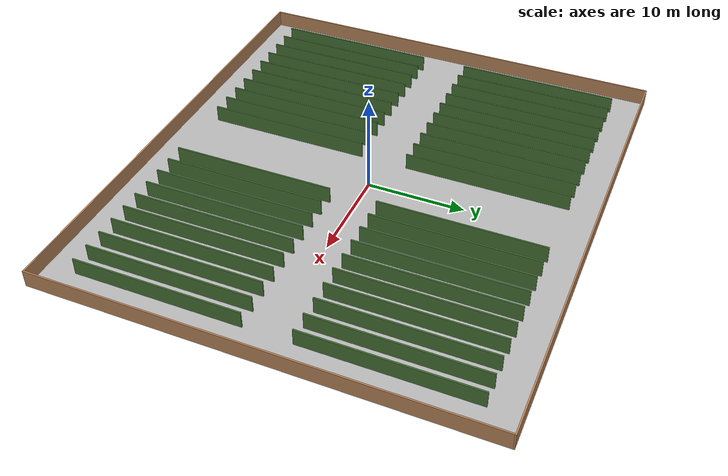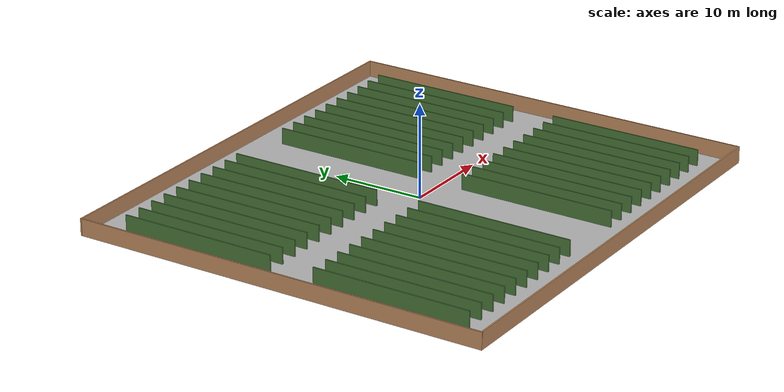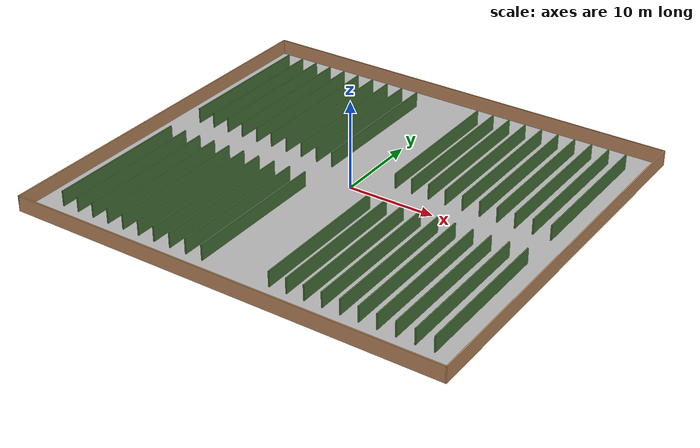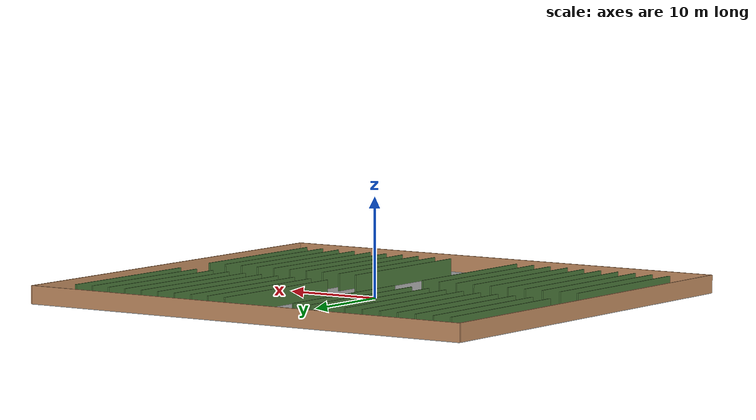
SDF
<?xml version='1.0'?>
<sdf version='1.7'>
  <model name='finca_nueva'>
    <pose>0 0 0 0 0 0</pose>

  <!-- Piso -->
    <link name='Floor_0'>
      <collision name='Floor_0_Collision'>
        <geometry>
          <box>
            <size>50 45 0.1</size>
          </box>
        </geometry>
        <pose>0 0 0 0 0 0</pose>
      </collision>
      <visual name='Floor_0_Visual'>
        <pose>0 0 0 0 0 0</pose>
        <geometry>
          <box>
            <size>50 45 0.1</size>
          </box>
        </geometry>
        <material>
           <script>
            <uri>materials/scripts</uri>
            <uri>materials/textures</uri>
            <name>sandAlbedo/Diffuse</name>
          </script>
        </material>
        <meta>
          <layer>0</layer>
        </meta>
      </visual>
      <pose>0 0 0 0 0 0</pose>
    </link>

  <!-- Paredes -->
    <link name='Wall_1'>
      <collision name='Wall_1_Collision'>
        <geometry>
          <box>
            <size>50.15 0.15 1.8</size>
          </box>
        </geometry>
        <pose>0 0 0.9 0 0 0</pose>
      </collision>
      <visual name='Wall_1_Visual'>
        <pose>0 0 0.9 0 -0 0</pose>
        <geometry>
          <box>
            <size>50.15 0.15 1.8</size>
          </box>
        </geometry>
        <material>
           <script>
            <uri>file://media/materials/scripts/gazebo.material</uri>
            <name>Gazebo/Grey</name>
          </script>
          <ambient>0.709804 0.513726 0.352941 1</ambient>
          <diffuse>0.7 0.7 0.7 1</diffuse>
          <specular>0.01 0.01 0.01 1</specular>
          <emissive>0 0 0 1</emissive>
        </material>
        <meta>
          <layer>0</layer>
        </meta>
      </visual>
      <pose>0 -22.5 0 0 0 0</pose>
    </link>

    <link name='Wall_3'>
      <collision name='Wall_3_Collision'>
        <geometry>
          <box>
            <size>45.15 0.15 1.8</size>
          </box>
        </geometry>
        <pose>0 0 0.9 0 -0 0</pose>
      </collision>
      <visual name='Wall_3_Visual'>
        <pose>0 0 0.9 0 -0 0</pose>
        <geometry>
          <box>
            <size>45.15 0.15 1.8</size>
          </box>
        </geometry>
        <material>
          <script>
            <uri>file://media/materials/scripts/gazebo.material</uri>
            <name>Gazebo/Grey</name>
          </script>
          <ambient>0.709804 0.513726 0.352941 1</ambient>
          <diffuse>0.7 0.7 0.7 1</diffuse>
          <specular>0.01 0.01 0.01 1</specular>
          <emissive>0 0 0 1</emissive>
        </material>
        <meta>
          <layer>0</layer>
        </meta>
      </visual>
      <pose>25 0 0 0 -0 1.5708</pose>
    </link>

    <link name='Wall_4'>
      <collision name='Wall_4_Collision'>
        <geometry>
          <box>
            <size>50.15 0.15 1.8</size>
          </box>
        </geometry>
        <pose>0 0 0.9 0 -0 0</pose>
      </collision>
      <visual name='Wall_4_Visual'>
        <pose>0 0 0.9 0 -0 0</pose>
        <geometry>
          <box>
            <size>50.15 0.15 1.8</size>
          </box>
        </geometry>
        <material>
          <script>
            <uri>file://media/materials/scripts/gazebo.material</uri>
            <name>Gazebo/Grey</name>
          </script>
          <ambient>0.709804 0.513726 0.352941 1</ambient>
          <diffuse>0.7 0.7 0.7 1</diffuse>
          <specular>0.01 0.01 0.01 1</specular>
          <emissive>0 0 0 1</emissive>
        </material>
        <meta>
          <layer>0</layer>
        </meta>
      </visual>
      <pose>0 22.5 0 0 -0 3.14159</pose>
    </link>

    <link name='Wall_5'>
      <collision name='Wall_5_Collision'>
        <geometry>
          <box>
            <size>45.15 0.15 1.8</size>
          </box>
        </geometry>
        <pose>0 0 0.9 0 -0 0</pose>
      </collision>
      <visual name='Wall_5_Visual'>
        <pose>0 0 0.9 0 -0 0</pose>
        <geometry>
          <box>
            <size>45.15 0.15 1.8</size>
          </box>
        </geometry>
        <material>
          <script>
            <uri>file://media/materials/scripts/gazebo.material</uri>
            <name>Gazebo/Grey</name>
          </script>
          <ambient>0.709804 0.513726 0.352941 1</ambient>
          <diffuse>0.7 0.7 0.7 1</diffuse>
          <specular>0.01 0.01 0.01 1</specular>
          <emissive>0 0 0 1</emissive>
        </material>
        <meta>
          <layer>0</layer>
        </meta>
      </visual>
      <pose>-25 0 0 0 -0 -1.5708</pose>
    </link>

  <!-- Arriba Izquierda -->
    <link name='Wall_11'>
      <collision name='Wall_11_Collision'>
        <geometry>
          <box>
            <size>17 0.15 1.8</size>
          </box>
        </geometry>
        <pose>0 0 0.9 0 -0 0</pose>
      </collision>
      <visual name='Wall_11_Visual'>
        <pose>0 0 0.9 0 -0 0</pose>
        <geometry>
          <box>
            <size>17 0.15 1.8</size>
          </box>
        </geometry>
        <material>
          <script>
            <uri>file://media/materials/scripts/gazebo.material</uri>
            <name>Gazebo/Grey</name>
          </script>
          <ambient>0.266667 0.435294 0.203922 1</ambient>
        </material>
        <meta>
          <layer>0</layer>
        </meta>
      </visual>
      <pose>-22 10.925 0 0 -0 -1.5708</pose>
    </link>

    <link name='Wall_12'>
      <collision name='Wall_12_Collision'>
        <geometry>
          <box>
            <size>17 0.15 1.8</size>
          </box>
        </geometry>
        <pose>0 0 0.9 0 -0 0</pose>
      </collision>
      <visual name='Wall_12_Visual'>
        <pose>0 0 0.9 0 -0 0</pose>
        <geometry>
          <box>
            <size>17 0.15 1.8</size>
          </box>
        </geometry>
        <material>
          <script>
            <uri>file://media/materials/scripts/gazebo.material</uri>
            <name>Gazebo/Grey</name>
          </script>
          <ambient>0.266667 0.435294 0.203922 1</ambient>
        </material>
        <meta>
          <layer>0</layer>
        </meta>
      </visual>
      <pose>-20 10.925 0 0 -0 -1.5708</pose>
    </link>

    <link name='Wall_13'>
      <collision name='Wall_13_Collision'>
        <geometry>
          <box>
            <size>17 0.15 1.8</size>
          </box>
        </geometry>
        <pose>0 0 0.9 0 0 0</pose>
      </collision>
      <visual name='Wall_13_Visual'>
        <pose>0 0 0.9 0 0 0</pose>
        <geometry>
          <box>
            <size>17 0.15 1.8</size>
          </box>
        </geometry>
        <material>
          <script>
            <uri>file://media/materials/scripts/gazebo.material</uri>
            <name>Gazebo/Grey</name>
          </script>
          <ambient>0.266667 0.435294 0.203922 1</ambient>
        </material>
        <meta>
          <layer>0</layer>
        </meta>
      </visual>
      <pose>-18 10.925 0 0 0 1.5708</pose>
    </link>

    <link name='Wall_14'>
      <collision name='Wall_14_Collision'>
        <geometry>
          <box>
            <size>17 0.15 1.8</size>
          </box>
        </geometry>
        <pose>0 0 0.9 0 0 0</pose>
      </collision>
      <visual name='Wall_14_Visual'>
        <pose>0 0 0.9 0 0 0</pose>
        <geometry>
          <box>
            <size>17 0.15 1.8</size>
          </box>
        </geometry>
        <material>
          <script>
            <uri>file://media/materials/scripts/gazebo.material</uri>
            <name>Gazebo/Grey</name>
          </script>
          <ambient>0.266667 0.435294 0.203922 1</ambient>
        </material>
        <meta>
          <layer>0</layer>
        </meta>
      </visual>
      <pose>-16 10.925 0 0 0 1.5708</pose>
    </link>

    <link name='Wall_15'>
      <collision name='Wall_15_Collision'>
        <geometry>
          <box>
            <size>17 0.15 1.8</size>
          </box>
        </geometry>
        <pose>0 0 0.9 0 0 0</pose>
      </collision>
      <visual name='Wall_15_Visual'>
        <pose>0 0 0.9 0 0 0</pose>
        <geometry>
          <box>
            <size>17 0.15 1.8</size>
          </box>
        </geometry>
        <material>
          <script>
            <uri>file://media/materials/scripts/gazebo.material</uri>
            <name>Gazebo/Grey</name>
          </script>
          <ambient>0.266667 0.435294 0.203922 1</ambient>
        </material>
        <meta>
          <layer>0</layer>
        </meta>
      </visual>
      <pose>-14 10.925 0 0 0 1.5708</pose>
    </link>

    <link name='Wall_16'>
      <collision name='Wall_16_Collision'>
        <geometry>
          <box>
            <size>17 0.15 1.8</size>
          </box>
        </geometry>
        <pose>0 0 0.9 0 0 0</pose>
      </collision>
      <visual name='Wall_16_Visual'>
        <pose>0 0 0.9 0 0 0</pose>
        <geometry>
          <box>
            <size>17 0.15 1.8</size>
          </box>
        </geometry>
        <material>
          <script>
            <uri>file://media/materials/scripts/gazebo.material</uri>
            <name>Gazebo/Grey</name>
          </script>
          <ambient>0.266667 0.435294 0.203922 1</ambient>
        </material>
        <meta>
          <layer>0</layer>
        </meta>
      </visual>
      <pose>-12 10.925 0 0 0 1.5708</pose>
    </link>

    <link name='Wall_17'>
      <collision name='Wall_17_Collision'>
        <geometry>
          <box>
            <size>17 0.15 1.8</size>
          </box>
        </geometry>
        <pose>0 0 0.9 0 0 0</pose>
      </collision>
      <visual name='Wall_17_Visual'>
        <pose>0 0 0.9 0 0 0</pose>
        <geometry>
          <box>
            <size>17 0.15 1.8</size>
          </box>
        </geometry>
        <material>
          <script>
            <uri>file://media/materials/scripts/gazebo.material</uri>
            <name>Gazebo/Grey</name>
          </script>
          <ambient>0.266667 0.435294 0.203922 1</ambient>
        </material>
        <meta>
          <layer>0</layer>
        </meta>
      </visual>
      <pose>-10 10.925 0 0 0 1.5708</pose>
    </link>

    <link name='Wall_18'>
      <collision name='Wall_18_Collision'>
        <geometry>
          <box>
            <size>17 0.15 1.8</size>
          </box>
        </geometry>
        <pose>0 0 0.9 0 0 0</pose>
      </collision>
      <visual name='Wall_18_Visual'>
        <pose>0 0 0.9 0 0 0</pose>
        <geometry>
          <box>
            <size>17 0.15 1.8</size>
          </box>
        </geometry>
        <material>
          <script>
            <uri>file://media/materials/scripts/gazebo.material</uri>
            <name>Gazebo/Grey</name>
          </script>
          <ambient>0.266667 0.435294 0.203922 1</ambient>
        </material>
        <meta>
          <layer>0</layer>
        </meta>
      </visual>
      <pose>-8 10.925 0 0 0 1.5708</pose>
    </link>

    <link name='Wall_19'>
      <collision name='Wall_19_Collision'>
        <geometry>
          <box>
            <size>17 0.15 1.8</size>
          </box>
        </geometry>
        <pose>0 0 0.9 0 0 0</pose>
      </collision>
      <visual name='Wall_19_Visual'>
        <pose>0 0 0.9 0 0 0</pose>
        <geometry>
          <box>
            <size>17 0.15 1.8</size>
          </box>
        </geometry>
        <material>
          <script>
            <uri>file://media/materials/scripts/gazebo.material</uri>
            <name>Gazebo/Grey</name>
          </script>
          <ambient>0.266667 0.435294 0.203922 1</ambient>
        </material>
        <meta>
          <layer>0</layer>
        </meta>
      </visual>
      <pose>-6 10.925 0 0 0 1.5708</pose>
    </link>

    <link name='Wall_20'>
      <collision name='Wall_20_Collision'>
        <geometry>
          <box>
            <size>17 0.15 1.8</size>
          </box>
        </geometry>
        <pose>0 0 0.9 0 0 0</pose>
      </collision>
      <visual name='Wall_20_Visual'>
        <pose>0 0 0.9 0 0 0</pose>
        <geometry>
          <box>
            <size>17 0.15 1.8</size>
          </box>
        </geometry>
        <material>
          <script>
            <uri>file://media/materials/scripts/gazebo.material</uri>
            <name>Gazebo/Grey</name>
          </script>
          <ambient>0.266667 0.435294 0.203922 1</ambient>
        </material>
        <meta>
          <layer>0</layer>
        </meta>
      </visual>
      <pose>-4 10.925 0 0 0 1.5708</pose>
    </link>

  <!-- Arriba Derecha -->
    <link name='Wall_21'>
      <collision name='Wall_21_Collision'>
        <geometry>
          <box>
            <size>17 0.15 1.8</size>
          </box>
        </geometry>
        <pose>0 0 0.9 0 -0 0</pose>
      </collision>
      <visual name='Wall_21_Visual'>
        <pose>0 0 0.9 0 -0 0</pose>
        <geometry>
          <box>
            <size>17 0.15 1.8</size>
          </box>
        </geometry>
        <material>
          <script>
            <uri>file://media/materials/scripts/gazebo.material</uri>
            <name>Gazebo/Grey</name>
          </script>
          <ambient>0.266667 0.435294 0.203922 1</ambient>
        </material>
        <meta>
          <layer>0</layer>
        </meta>
      </visual>
      <pose>4 10.925 0 0 -0 1.5708</pose>
    </link>

    <link name='Wall_22'>
      <collision name='Wall_22_Collision'>
        <geometry>
          <box>
            <size>17 0.15 1.8</size>
          </box>
        </geometry>
        <pose>0 0 0.9 0 -0 0</pose>
      </collision>
      <visual name='Wall_22_Visual'>
        <pose>0 0 0.9 0 -0 0</pose>
        <geometry>
          <box>
            <size>17 0.15 1.8</size>
          </box>
        </geometry>
        <material>
          <script>
            <uri>file://media/materials/scripts/gazebo.material</uri>
            <name>Gazebo/Grey</name>
          </script>
          <ambient>0.266667 0.435294 0.203922 1</ambient>
        </material>
        <meta>
          <layer>0</layer>
        </meta>
      </visual>
      <pose>6 10.925 0 0 -0 1.5708</pose>
    </link>

    <link name='Wall_23'>
      <collision name='Wall_23_Collision'>
        <geometry>
          <box>
            <size>17 0.15 1.8</size>
          </box>
        </geometry>
        <pose>0 0 0.9 0 -0 0</pose>
      </collision>
      <visual name='Wall_23_Visual'>
        <pose>0 0 0.9 0 -0 0</pose>
        <geometry>
          <box>
            <size>17 0.15 1.8</size>
          </box>
        </geometry>
        <material>
          <script>
            <uri>file://media/materials/scripts/gazebo.material</uri>
            <name>Gazebo/Grey</name>
          </script>
          <ambient>0.266667 0.435294 0.203922 1</ambient>
        </material>
        <meta>
          <layer>0</layer>
        </meta>
      </visual>
      <pose>8 10.925 0 0 -0 1.5708</pose>
    </link>

    <link name='Wall_24'>
      <collision name='Wall_24_Collision'>
        <geometry>
          <box>
            <size>17 0.15 1.8</size>
          </box>
        </geometry>
        <pose>0 0 0.9 0 -0 0</pose>
      </collision>
      <visual name='Wall_24_Visual'>
        <pose>0 0 0.9 0 -0 0</pose>
        <geometry>
          <box>
            <size>17 0.15 1.8</size>
          </box>
        </geometry>
        <material>
          <script>
            <uri>file://media/materials/scripts/gazebo.material</uri>
            <name>Gazebo/Grey</name>
          </script>
          <ambient>0.266667 0.435294 0.203922 1</ambient>
        </material>
        <meta>
          <layer>0</layer>
        </meta>
      </visual>
      <pose>10 10.925 0 0 -0 1.5708</pose>
    </link>

    <link name='Wall_25'>
      <collision name='Wall_25_Collision'>
        <geometry>
          <box>
            <size>17 0.15 1.8</size>
          </box>
        </geometry>
        <pose>0 0 0.9 0 -0 0</pose>
      </collision>
      <visual name='Wall_25_Visual'>
        <pose>0 0 0.9 0 -0 0</pose>
        <geometry>
          <box>
            <size>17 0.15 1.8</size>
          </box>
        </geometry>
        <material>
          <script>
            <uri>file://media/materials/scripts/gazebo.material</uri>
            <name>Gazebo/Grey</name>
          </script>
          <ambient>0.266667 0.435294 0.203922 1</ambient>
        </material>
        <meta>
          <layer>0</layer>
        </meta>
      </visual>
      <pose>12 10.925 0 0 -0 1.5708</pose>
    </link>

    <link name='Wall_26'>
      <collision name='Wall_26_Collision'>
        <geometry>
          <box>
            <size>17 0.15 1.8</size>
          </box>
        </geometry>
        <pose>0 0 0.9 0 -0 0</pose>
      </collision>
      <visual name='Wall_26_Visual'>
        <pose>0 0 0.9 0 -0 0</pose>
        <geometry>
          <box>
            <size>17 0.15 1.8</size>
          </box>
        </geometry>
        <material>
          <script>
            <uri>file://media/materials/scripts/gazebo.material</uri>
            <name>Gazebo/Grey</name>
          </script>
          <ambient>0.266667 0.435294 0.203922 1</ambient>
        </material>
        <meta>
          <layer>0</layer>
        </meta>
      </visual>
      <pose>14 10.925 0 0 -0 1.5708</pose>
    </link>

    <link name='Wall_27'>
      <collision name='Wall_27_Collision'>
        <geometry>
          <box>
            <size>17 0.15 1.8</size>
          </box>
        </geometry>
        <pose>0 0 0.9 0 -0 0</pose>
      </collision>
      <visual name='Wall_27_Visual'>
        <pose>0 0 0.9 0 -0 0</pose>
        <geometry>
          <box>
            <size>17 0.15 1.8</size>
          </box>
        </geometry>
        <material>
          <script>
            <uri>file://media/materials/scripts/gazebo.material</uri>
            <name>Gazebo/Grey</name>
          </script>
          <ambient>0.266667 0.435294 0.203922 1</ambient>
        </material>
        <meta>
          <layer>0</layer>
        </meta>
      </visual>
      <pose>16 10.925 0 0 -0 1.5708</pose>
    </link>

    <link name='Wall_28'>
      <collision name='Wall_28_Collision'>
        <geometry>
          <box>
            <size>17 0.15 1.8</size>
          </box>
        </geometry>
        <pose>0 0 0.9 0 -0 0</pose>
      </collision>
      <visual name='Wall_28_Visual'>
        <pose>0 0 0.9 0 -0 0</pose>
        <geometry>
          <box>
            <size>17 0.15 1.8</size>
          </box>
        </geometry>
        <material>
          <script>
            <uri>file://media/materials/scripts/gazebo.material</uri>
            <name>Gazebo/Grey</name>
          </script>
          <ambient>0.266667 0.435294 0.203922 1</ambient>
        </material>
        <meta>
          <layer>0</layer>
        </meta>
      </visual>
      <pose>18 10.925 0 0 -0 1.5708</pose>
    </link>

    <link name='Wall_29'>
      <collision name='Wall_29_Collision'>
        <geometry>
          <box>
            <size>17 0.15 1.8</size>
          </box>
        </geometry>
        <pose>0 0 0.9 0 -0 0</pose>
      </collision>
      <visual name='Wall_29_Visual'>
        <pose>0 0 0.9 0 -0 0</pose>
        <geometry>
          <box>
            <size>17 0.15 1.8</size>
          </box>
        </geometry>
        <material>
          <script>
            <uri>file://media/materials/scripts/gazebo.material</uri>
            <name>Gazebo/Grey</name>
          </script>
          <ambient>0.266667 0.435294 0.203922 1</ambient>
        </material>
        <meta>
          <layer>0</layer>
        </meta>
      </visual>
      <pose>20 10.925 0 0 -0 1.5708</pose>
    </link>

    <link name='Wall_30'>
      <collision name='Wall_30_Collision'>
        <geometry>
          <box>
            <size>17 0.15 1.8</size>
          </box>
        </geometry>
        <pose>0 0 0.9 0 -0 0</pose>
      </collision>
      <visual name='Wall_30_Visual'>
        <pose>0 0 0.9 0 -0 0</pose>
        <geometry>
          <box>
            <size>17 0.15 1.8</size>
          </box>
        </geometry>
        <material>
          <script>
            <uri>file://media/materials/scripts/gazebo.material</uri>
            <name>Gazebo/Grey</name>
          </script>
          <ambient>0.266667 0.435294 0.203922 1</ambient>
        </material>
        <meta>
          <layer>0</layer>
        </meta>
      </visual>
      <pose>22 10.925 0 0 -0 1.5708</pose>
    </link>

  <!-- Abajo Derecha -->
    <link name='Wall_31'>
      <collision name='Wall_31_Collision'>
        <geometry>
          <box>
            <size>17 0.15 1.8</size>
          </box>
        </geometry>
        <pose>0 0 0.9 0 -0 0</pose>
      </collision>
      <visual name='Wall_31_Visual'>
        <pose>0 0 0.9 0 -0 0</pose>
        <geometry>
          <box>
            <size>17 0.15 1.8</size>
          </box>
        </geometry>
        <material>
          <script>
            <uri>file://media/materials/scripts/gazebo.material</uri>
            <name>Gazebo/Grey</name>
          </script>
          <ambient>0.266667 0.435294 0.203922 1</ambient>
        </material>
        <meta>
          <layer>0</layer>
        </meta>
      </visual>
      <pose>4 -10.925 0 0 -0 1.5708</pose>
    </link>

    <link name='Wall_32'>
      <collision name='Wall_32_Collision'>
        <geometry>
          <box>
            <size>17 0.15 1.8</size>
          </box>
        </geometry>
        <pose>0 0 0.9 0 -0 0</pose>
      </collision>
      <visual name='Wall_32_Visual'>
        <pose>0 0 0.9 0 -0 0</pose>
        <geometry>
          <box>
            <size>17 0.15 1.8</size>
          </box>
        </geometry>
        <material>
          <script>
            <uri>file://media/materials/scripts/gazebo.material</uri>
            <name>Gazebo/Grey</name>
          </script>
          <ambient>0.266667 0.435294 0.203922 1</ambient>
        </material>
        <meta>
          <layer>0</layer>
        </meta>
      </visual>
      <pose>6 -10.925 0 0 -0 1.5708</pose>
    </link>

    <link name='Wall_33'>
      <collision name='Wall_33_Collision'>
        <geometry>
          <box>
            <size>17 0.15 1.8</size>
          </box>
        </geometry>
        <pose>0 0 0.9 0 -0 0</pose>
      </collision>
      <visual name='Wall_33_Visual'>
        <pose>0 0 0.9 0 -0 0</pose>
        <geometry>
          <box>
            <size>17 0.15 1.8</size>
          </box>
        </geometry>
        <material>
          <script>
            <uri>file://media/materials/scripts/gazebo.material</uri>
            <name>Gazebo/Grey</name>
          </script>
          <ambient>0.266667 0.435294 0.203922 1</ambient>
        </material>
        <meta>
          <layer>0</layer>
        </meta>
      </visual>
      <pose>8 -10.925 0 0 -0 1.5708</pose>
    </link>

    <link name='Wall_34'>
      <collision name='Wall_34_Collision'>
        <geometry>
          <box>
            <size>17 0.15 1.8</size>
          </box>
        </geometry>
        <pose>0 0 0.9 0 -0 0</pose>
      </collision>
      <visual name='Wall_34_Visual'>
        <pose>0 0 0.9 0 -0 0</pose>
        <geometry>
          <box>
            <size>17 0.15 1.8</size>
          </box>
        </geometry>
        <material>
          <script>
            <uri>file://media/materials/scripts/gazebo.material</uri>
            <name>Gazebo/Grey</name>
          </script>
          <ambient>0.266667 0.435294 0.203922 1</ambient>
        </material>
        <meta>
          <layer>0</layer>
        </meta>
      </visual>
      <pose>10 -10.925 0 0 -0 1.5708</pose>
    </link>

    <link name='Wall_35'>
      <collision name='Wall_35_Collision'>
        <geometry>
          <box>
            <size>17 0.15 1.8</size>
          </box>
        </geometry>
        <pose>0 0 0.9 0 -0 0</pose>
      </collision>
      <visual name='Wall_35_Visual'>
        <pose>0 0 0.9 0 -0 0</pose>
        <geometry>
          <box>
            <size>17 0.15 1.8</size>
          </box>
        </geometry>
        <material>
          <script>
            <uri>file://media/materials/scripts/gazebo.material</uri>
            <name>Gazebo/Grey</name>
          </script>
          <ambient>0.266667 0.435294 0.203922 1</ambient>
        </material>
        <meta>
          <layer>0</layer>
        </meta>
      </visual>
      <pose>12 -10.925 0 0 -0 1.5708</pose>
    </link>

    <link name='Wall_36'>
      <collision name='Wall_36_Collision'>
        <geometry>
          <box>
            <size>17 0.15 1.8</size>
          </box>
        </geometry>
        <pose>0 0 0.9 0 -0 0</pose>
      </collision>
      <visual name='Wall_36_Visual'>
        <pose>0 0 0.9 0 -0 0</pose>
        <geometry>
          <box>
            <size>17 0.15 1.8</size>
          </box>
        </geometry>
        <material>
          <script>
            <uri>file://media/materials/scripts/gazebo.material</uri>
            <name>Gazebo/Grey</name>
          </script>
          <ambient>0.266667 0.435294 0.203922 1</ambient>
        </material>
        <meta>
          <layer>0</layer>
        </meta>
      </visual>
      <pose>14 -10.925 0 0 -0 1.5708</pose>
    </link>

    <link name='Wall_37'>
      <collision name='Wall_37_Collision'>
        <geometry>
          <box>
            <size>17 0.15 1.8</size>
          </box>
        </geometry>
        <pose>0 0 0.9 0 -0 0</pose>
      </collision>
      <visual name='Wall_37_Visual'>
        <pose>0 0 0.9 0 -0 0</pose>
        <geometry>
          <box>
            <size>17 0.15 1.8</size>
          </box>
        </geometry>
        <material>
          <script>
            <uri>file://media/materials/scripts/gazebo.material</uri>
            <name>Gazebo/Grey</name>
          </script>
          <ambient>0.266667 0.435294 0.203922 1</ambient>
        </material>
        <meta>
          <layer>0</layer>
        </meta>
      </visual>
      <pose>16 -10.925 0 0 -0 1.5708</pose>
    </link>

    <link name='Wall_38'>
      <collision name='Wall_38_Collision'>
        <geometry>
          <box>
            <size>17 0.15 1.8</size>
          </box>
        </geometry>
        <pose>0 0 0.9 0 -0 0</pose>
      </collision>
      <visual name='Wall_38_Visual'>
        <pose>0 0 0.9 0 -0 0</pose>
        <geometry>
          <box>
            <size>17 0.15 1.8</size>
          </box>
        </geometry>
        <material>
          <script>
            <uri>file://media/materials/scripts/gazebo.material</uri>
            <name>Gazebo/Grey</name>
          </script>
          <ambient>0.266667 0.435294 0.203922 1</ambient>
        </material>
        <meta>
          <layer>0</layer>
        </meta>
      </visual>
      <pose>18 -10.925 0 0 -0 1.5708</pose>
    </link>

    <link name='Wall_39'>
      <collision name='Wall_39_Collision'>
        <geometry>
          <box>
            <size>17 0.15 1.8</size>
          </box>
        </geometry>
        <pose>0 0 0.9 0 -0 0</pose>
      </collision>
      <visual name='Wall_39_Visual'>
        <pose>0 0 0.9 0 -0 0</pose>
        <geometry>
          <box>
            <size>17 0.15 1.8</size>
          </box>
        </geometry>
        <material>
          <script>
            <uri>file://media/materials/scripts/gazebo.material</uri>
            <name>Gazebo/Grey</name>
          </script>
          <ambient>0.266667 0.435294 0.203922 1</ambient>
        </material>
        <meta>
          <layer>0</layer>
        </meta>
      </visual>
      <pose>20 -10.925 0 0 -0 1.5708</pose>
    </link>

    <link name='Wall_40'>
      <collision name='Wall_40_Collision'>
        <geometry>
          <box>
            <size>17 0.15 1.8</size>
          </box>
        </geometry>
        <pose>0 0 0.9 0 -0 0</pose>
      </collision>
      <visual name='Wall_40_Visual'>
        <pose>0 0 0.9 0 -0 0</pose>
        <geometry>
          <box>
            <size>17 0.15 1.8</size>
          </box>
        </geometry>
        <material>
          <script>
            <uri>file://media/materials/scripts/gazebo.material</uri>
            <name>Gazebo/Grey</name>
          </script>
          <ambient>0.266667 0.435294 0.203922 1</ambient>
        </material>
        <meta>
          <layer>0</layer>
        </meta>
      </visual>
      <pose>22 -10.925 0 0 -0 1.5708</pose>
    </link>

  <!-- Abajo Izquierda -->
    <link name='Wall_41'>
      <collision name='Wall_41_Collision'>
        <geometry>
          <box>
            <size>17 0.15 1.8</size>
          </box>
        </geometry>
        <pose>0 0 0.9 0 -0 0</pose>
      </collision>
      <visual name='Wall_41_Visual'>
        <pose>0 0 0.9 0 -0 0</pose>
        <geometry>
          <box>
            <size>17 0.15 1.8</size>
          </box>
        </geometry>
        <material>
          <script>
            <uri>file://media/materials/scripts/gazebo.material</uri>
            <name>Gazebo/Grey</name>
          </script>
          <ambient>0.266667 0.435294 0.203922 1</ambient>
        </material>
        <meta>
          <layer>0</layer>
        </meta>
      </visual>
      <pose>-22 -10.925 0 0 -0 -1.5708</pose>
    </link>

    <link name='Wall_42'>
      <collision name='Wall_42_Collision'>
        <geometry>
          <box>
            <size>17 0.15 1.8</size>
          </box>
        </geometry>
        <pose>0 0 0.9 0 -0 0</pose>
      </collision>
      <visual name='Wall_42_Visual'>
        <pose>0 0 0.9 0 -0 0</pose>
        <geometry>
          <box>
            <size>17 0.15 1.8</size>
          </box>
        </geometry>
        <material>
          <script>
            <uri>file://media/materials/scripts/gazebo.material</uri>
            <name>Gazebo/Grey</name>
          </script>
          <ambient>0.266667 0.435294 0.203922 1</ambient>
        </material>
        <meta>
          <layer>0</layer>
        </meta>
      </visual>
      <pose>-20 -10.925 0 0 -0 -1.5708</pose>
    </link>

    <link name='Wall_43'>
      <collision name='Wall_43_Collision'>
        <geometry>
          <box>
            <size>17 0.15 1.8</size>
          </box>
        </geometry>
        <pose>0 0 0.9 0 0 0</pose>
      </collision>
      <visual name='Wall_43_Visual'>
        <pose>0 0 0.9 0 0 0</pose>
        <geometry>
          <box>
            <size>17 0.15 1.8</size>
          </box>
        </geometry>
        <material>
          <script>
            <uri>file://media/materials/scripts/gazebo.material</uri>
            <name>Gazebo/Grey</name>
          </script>
          <ambient>0.266667 0.435294 0.203922 1</ambient>
        </material>
        <meta>
          <layer>0</layer>
        </meta>
      </visual>
      <pose>-18 -10.925 0 0 0 1.5708</pose>
    </link>

    <link name='Wall_44'>
      <collision name='Wall_44_Collision'>
        <geometry>
          <box>
            <size>17 0.15 1.8</size>
          </box>
        </geometry>
        <pose>0 0 0.9 0 0 0</pose>
      </collision>
      <visual name='Wall_44_Visual'>
        <pose>0 0 0.9 0 0 0</pose>
        <geometry>
          <box>
            <size>17 0.15 1.8</size>
          </box>
        </geometry>
        <material>
          <script>
            <uri>file://media/materials/scripts/gazebo.material</uri>
            <name>Gazebo/Grey</name>
          </script>
          <ambient>0.266667 0.435294 0.203922 1</ambient>
        </material>
        <meta>
          <layer>0</layer>
        </meta>
      </visual>
      <pose>-16 -10.925 0 0 0 1.5708</pose>
    </link>

    <link name='Wall_45'>
      <collision name='Wall_45_Collision'>
        <geometry>
          <box>
            <size>17 0.15 1.8</size>
          </box>
        </geometry>
        <pose>0 0 0.9 0 0 0</pose>
      </collision>
      <visual name='Wall_45_Visual'>
        <pose>0 0 0.9 0 0 0</pose>
        <geometry>
          <box>
            <size>17 0.15 1.8</size>
          </box>
        </geometry>
        <material>
          <script>
            <uri>file://media/materials/scripts/gazebo.material</uri>
            <name>Gazebo/Grey</name>
          </script>
          <ambient>0.266667 0.435294 0.203922 1</ambient>
        </material>
        <meta>
          <layer>0</layer>
        </meta>
      </visual>
      <pose>-14 -10.925 0 0 0 1.5708</pose>
    </link>

    <link name='Wall_46'>
      <collision name='Wall_46_Collision'>
        <geometry>
          <box>
            <size>17 0.15 1.8</size>
          </box>
        </geometry>
        <pose>0 0 0.9 0 0 0</pose>
      </collision>
      <visual name='Wall_46_Visual'>
        <pose>0 0 0.9 0 0 0</pose>
        <geometry>
          <box>
            <size>17 0.15 1.8</size>
          </box>
        </geometry>
        <material>
          <script>
            <uri>file://media/materials/scripts/gazebo.material</uri>
            <name>Gazebo/Grey</name>
          </script>
          <ambient>0.266667 0.435294 0.203922 1</ambient>
        </material>
        <meta>
          <layer>0</layer>
        </meta>
      </visual>
      <pose>-12 -10.925 0 0 0 1.5708</pose>
    </link>

    <link name='Wall_47'>
      <collision name='Wall_47_Collision'>
        <geometry>
          <box>
            <size>17 0.15 1.8</size>
          </box>
        </geometry>
        <pose>0 0 0.9 0 0 0</pose>
      </collision>
      <visual name='Wall_47_Visual'>
        <pose>0 0 0.9 0 0 0</pose>
        <geometry>
          <box>
            <size>17 0.15 1.8</size>
          </box>
        </geometry>
        <material>
          <script>
            <uri>file://media/materials/scripts/gazebo.material</uri>
            <name>Gazebo/Grey</name>
          </script>
          <ambient>0.266667 0.435294 0.203922 1</ambient>
        </material>
        <meta>
          <layer>0</layer>
        </meta>
      </visual>
      <pose>-10 -10.925 0 0 0 1.5708</pose>
    </link>

    <link name='Wall_48'>
      <collision name='Wall_48_Collision'>
        <geometry>
          <box>
            <size>17 0.15 1.8</size>
          </box>
        </geometry>
        <pose>0 0 0.9 0 0 0</pose>
      </collision>
      <visual name='Wall_48_Visual'>
        <pose>0 0 0.9 0 0 0</pose>
        <geometry>
          <box>
            <size>17 0.15 1.8</size>
          </box>
        </geometry>
        <material>
          <script>
            <uri>file://media/materials/scripts/gazebo.material</uri>
            <name>Gazebo/Grey</name>
          </script>
          <ambient>0.266667 0.435294 0.203922 1</ambient>
        </material>
        <meta>
          <layer>0</layer>
        </meta>
      </visual>
      <pose>-8 -10.925 0 0 0 1.5708</pose>
    </link>

    <link name='Wall_49'>
      <collision name='Wall_49_Collision'>
        <geometry>
          <box>
            <size>17 0.15 1.8</size>
          </box>
        </geometry>
        <pose>0 0 0.9 0 0 0</pose>
      </collision>
      <visual name='Wall_49_Visual'>
        <pose>0 0 0.9 0 0 0</pose>
        <geometry>
          <box>
            <size>17 0.15 1.8</size>
          </box>
        </geometry>
        <material>
          <script>
            <uri>file://media/materials/scripts/gazebo.material</uri>
            <name>Gazebo/Grey</name>
          </script>
          <ambient>0.266667 0.435294 0.203922 1</ambient>
        </material>
        <meta>
          <layer>0</layer>
        </meta>
      </visual>
      <pose>-6 -10.925 0 0 0 1.5708</pose>
    </link>

    <link name='Wall_50'>
      <collision name='Wall_50_Collision'>
        <geometry>
          <box>
            <size>17 0.15 1.8</size>
          </box>
        </geometry>
        <pose>0 0 0.9 0 0 0</pose>
      </collision>
      <visual name='Wall_50_Visual'>
        <pose>0 0 0.9 0 0 0</pose>
        <geometry>
          <box>
            <size>17 0.15 1.8</size>
          </box>
        </geometry>
        <material>
          <script>
            <uri>file://media/materials/scripts/gazebo.material</uri>
            <name>Gazebo/Grey</name>
          </script>
          <ambient>0.266667 0.435294 0.203922 1</ambient>
        </material>
        <meta>
          <layer>0</layer>
        </meta>
      </visual>
      <pose>-4 -10.925 0 0 0 1.5708</pose>
    </link>

    <static>1</static>
  </model>
</sdf>
